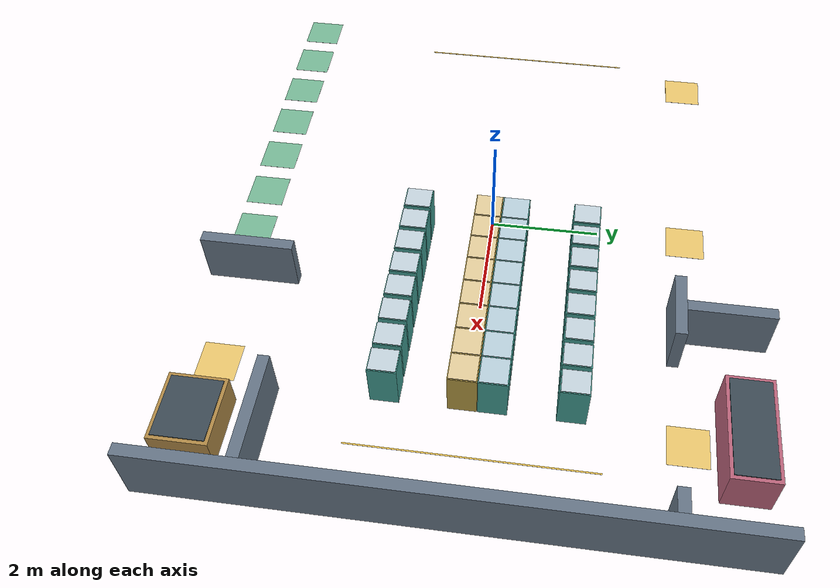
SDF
<sdf version="1.6">
 <world name="warehouse">
  <model name="wall_east">
   <static>true</static>
   <pose>6.1 0 0 0 0 0</pose>
   <link name="body">
    <collision name="collision">
     <pose>0 0 0.6 0 0 0</pose>
     <geometry><box><size>0.2 10 1.2</size></box></geometry>
    </collision>
    <visual name="visual">
     <pose>0 0 0.6 0 0 0</pose>
     <geometry><box><size>0.2 10 1.2</size></box></geometry>
     <material>
      <ambient>0.4 0.4627450980392157 0.5294117647058824 1</ambient>
      <diffuse>0.4 0.4627450980392157 0.5294117647058824 1</diffuse>
     </material>
     <cast_shadows>false</cast_shadows>
    </visual>
   </link>
  </model>
  <model name="partition_east">
   <static>true</static>
   <pose>5.05 -3.25 0 0 0 0</pose>
   <link name="body">
    <collision name="collision">
     <pose>0 0 0.5 0 0 0</pose>
     <geometry><box><size>1.9 0.2 1.0</size></box></geometry>
    </collision>
    <visual name="visual">
     <pose>0 0 0.5 0 0 0</pose>
     <geometry><box><size>1.9 0.2 1.0</size></box></geometry>
     <material>
      <ambient>0.4 0.4627450980392157 0.5294117647058824 1</ambient>
      <diffuse>0.4 0.4627450980392157 0.5294117647058824 1</diffuse>
     </material>
     <cast_shadows>false</cast_shadows>
    </visual>
   </link>
  </model>
  <model name="work_divider_e">
   <static>true</static>
   <pose>2.2 4.25 0 0 0 0</pose>
   <link name="body">
    <collision name="collision">
     <pose>0 0 0.5 0 0 0</pose>
     <geometry><box><size>0.2 1.5 1.0</size></box></geometry>
    </collision>
    <visual name="visual">
     <pose>0 0 0.5 0 0 0</pose>
     <geometry><box><size>0.2 1.5 1.0</size></box></geometry>
     <material>
      <ambient>0.4 0.4627450980392157 0.5294117647058824 1</ambient>
      <diffuse>0.4 0.4627450980392157 0.5294117647058824 1</diffuse>
     </material>
     <cast_shadows>false</cast_shadows>
    </visual>
   </link>
  </model>
  <model name="work_wing_e">
   <static>true</static>
   <pose>2.2 3.4 0 0 0 0</pose>
   <link name="body">
    <collision name="collision">
     <pose>0 0 0.5 0 0 0</pose>
     <geometry><box><size>1.2 0.2 1.0</size></box></geometry>
    </collision>
    <visual name="visual">
     <pose>0 0 0.5 0 0 0</pose>
     <geometry><box><size>1.2 0.2 1.0</size></box></geometry>
     <material>
      <ambient>0.4 0.4627450980392157 0.5294117647058824 1</ambient>
      <diffuse>0.4 0.4627450980392157 0.5294117647058824 1</diffuse>
     </material>
     <cast_shadows>false</cast_shadows>
    </visual>
   </link>
  </model>
  <model name="work_stub_e">
   <static>true</static>
   <pose>5.75 3.4 0 0 0 0</pose>
   <link name="body">
    <collision name="collision">
     <pose>0 0 0.5 0 0 0</pose>
     <geometry><box><size>0.5 0.2 1.0</size></box></geometry>
    </collision>
    <visual name="visual">
     <pose>0 0 0.5 0 0 0</pose>
     <geometry><box><size>0.5 0.2 1.0</size></box></geometry>
     <material>
      <ambient>0.4 0.4627450980392157 0.5294117647058824 1</ambient>
      <diffuse>0.4 0.4627450980392157 0.5294117647058824 1</diffuse>
     </material>
     <cast_shadows>false</cast_shadows>
    </visual>
   </link>
  </model>
  <model name="shipping_divider">
   <static>true</static>
   <pose>1.8 -4.175 0 0 0 0</pose>
   <link name="body">
    <collision name="collision">
     <pose>0 0 0.5 0 0 0</pose>
     <geometry><box><size>0.2 1.65 1.0</size></box></geometry>
    </collision>
    <visual name="visual">
     <pose>0 0 0.5 0 0 0</pose>
     <geometry><box><size>0.2 1.65 1.0</size></box></geometry>
     <material>
      <ambient>0.4 0.4627450980392157 0.5294117647058824 1</ambient>
      <diffuse>0.4 0.4627450980392157 0.5294117647058824 1</diffuse>
     </material>
     <cast_shadows>false</cast_shadows>
    </visual>
   </link>
  </model>
  <model name="machine">
   <static>true</static>
   <pose>4.3 4.5 0 0 0 0</pose>
   <link name="body">
    <collision name="collision">
     <pose>0 0 0.425 0 0 0</pose>
     <geometry><box><size>1.8 0.8 0.85</size></box></geometry>
    </collision>
    <visual name="visual">
     <pose>0 0 0.425 0 0 0</pose>
     <geometry><box><size>1.8 0.8 0.85</size></box></geometry>
     <material>
      <ambient>0.7372549019607844 0.39215686274509803 0.4823529411764706 1</ambient>
      <diffuse>0.7372549019607844 0.39215686274509803 0.4823529411764706 1</diffuse>
     </material>
     <cast_shadows>false</cast_shadows>
    </visual>
    <visual name="work_surface">
     <pose>0 0 0.86 0 0 0</pose>
     <geometry><box><size>1.6800000000000002 0.68 0.02</size></box></geometry>
     <material>
      <ambient>0.23921568627450981 0.29411764705882354 0.3333333333333333 1</ambient>
      <diffuse>0.23921568627450981 0.29411764705882354 0.3333333333333333 1</diffuse>
     </material>
     <cast_shadows>false</cast_shadows>
    </visual>
   </link>
  </model>
  <model name="shipping">
   <static>true</static>
   <pose>5 -4.3 0 0 0 0</pose>
   <link name="body">
    <collision name="collision">
     <pose>0 0 0.325 0 0 0</pose>
     <geometry><box><size>1.2 1.0 0.65</size></box></geometry>
    </collision>
    <visual name="visual">
     <pose>0 0 0.325 0 0 0</pose>
     <geometry><box><size>1.2 1.0 0.65</size></box></geometry>
     <material>
      <ambient>0.6980392156862745 0.5450980392156862 0.2784313725490196 1</ambient>
      <diffuse>0.6980392156862745 0.5450980392156862 0.2784313725490196 1</diffuse>
     </material>
     <cast_shadows>false</cast_shadows>
    </visual>
    <visual name="work_surface">
     <pose>0 0 0.66 0 0 0</pose>
     <geometry><box><size>1.08 0.88 0.02</size></box></geometry>
     <material>
      <ambient>0.23921568627450981 0.29411764705882354 0.3333333333333333 1</ambient>
      <diffuse>0.23921568627450981 0.29411764705882354 0.3333333333333333 1</diffuse>
     </material>
     <cast_shadows>false</cast_shadows>
    </visual>
   </link>
  </model>
  <model name="rack_B1_1">
   <static>true</static>
   <pose>0.32000000000000006 -1.35 0 0 0 0</pose>
   <link name="body">
    <collision name="collision">
     <pose>0 0 0.45 0 0 0</pose>
     <geometry><box><size>0.44 0.5 0.9</size></box></geometry>
    </collision>
    <visual name="bay_single">
     <pose>0 0 0.45 0 0 0</pose>
     <geometry><box><size>0.44 0.49 0.9</size></box></geometry>
     <material>
      <ambient>0.2549019607843137 0.615686274509804 0.5764705882352941 1</ambient>
      <diffuse>0.2549019607843137 0.615686274509804 0.5764705882352941 1</diffuse>
     </material>
     <cast_shadows>false</cast_shadows>
    </visual>
    <visual name="cap_single">
     <pose>0 0 0.91 0 0 0</pose>
     <geometry><box><size>0.41000000000000003 0.46 0.02</size></box></geometry>
     <material>
      <ambient>0.7764705882352941 0.8352941176470589 0.8745098039215686 1</ambient>
      <diffuse>0.7764705882352941 0.8352941176470589 0.8745098039215686 1</diffuse>
     </material>
     <cast_shadows>false</cast_shadows>
    </visual>
   </link>
  </model>
  <model name="rack_B1_2">
   <static>true</static>
   <pose>0.8285714285714286 -1.35 0 0 0 0</pose>
   <link name="body">
    <collision name="collision">
     <pose>0 0 0.45 0 0 0</pose>
     <geometry><box><size>0.44 0.5 0.9</size></box></geometry>
    </collision>
    <visual name="bay_single">
     <pose>0 0 0.45 0 0 0</pose>
     <geometry><box><size>0.44 0.49 0.9</size></box></geometry>
     <material>
      <ambient>0.2549019607843137 0.615686274509804 0.5764705882352941 1</ambient>
      <diffuse>0.2549019607843137 0.615686274509804 0.5764705882352941 1</diffuse>
     </material>
     <cast_shadows>false</cast_shadows>
    </visual>
    <visual name="cap_single">
     <pose>0 0 0.91 0 0 0</pose>
     <geometry><box><size>0.41000000000000003 0.46 0.02</size></box></geometry>
     <material>
      <ambient>0.7764705882352941 0.8352941176470589 0.8745098039215686 1</ambient>
      <diffuse>0.7764705882352941 0.8352941176470589 0.8745098039215686 1</diffuse>
     </material>
     <cast_shadows>false</cast_shadows>
    </visual>
   </link>
  </model>
  <model name="rack_B1_3">
   <static>true</static>
   <pose>1.3371428571428572 -1.35 0 0 0 0</pose>
   <link name="body">
    <collision name="collision">
     <pose>0 0 0.45 0 0 0</pose>
     <geometry><box><size>0.44 0.5 0.9</size></box></geometry>
    </collision>
    <visual name="bay_single">
     <pose>0 0 0.45 0 0 0</pose>
     <geometry><box><size>0.44 0.49 0.9</size></box></geometry>
     <material>
      <ambient>0.2549019607843137 0.615686274509804 0.5764705882352941 1</ambient>
      <diffuse>0.2549019607843137 0.615686274509804 0.5764705882352941 1</diffuse>
     </material>
     <cast_shadows>false</cast_shadows>
    </visual>
    <visual name="cap_single">
     <pose>0 0 0.91 0 0 0</pose>
     <geometry><box><size>0.41000000000000003 0.46 0.02</size></box></geometry>
     <material>
      <ambient>0.7764705882352941 0.8352941176470589 0.8745098039215686 1</ambient>
      <diffuse>0.7764705882352941 0.8352941176470589 0.8745098039215686 1</diffuse>
     </material>
     <cast_shadows>false</cast_shadows>
    </visual>
   </link>
  </model>
  <model name="rack_B1_4">
   <static>true</static>
   <pose>1.8457142857142859 -1.35 0 0 0 0</pose>
   <link name="body">
    <collision name="collision">
     <pose>0 0 0.45 0 0 0</pose>
     <geometry><box><size>0.44 0.5 0.9</size></box></geometry>
    </collision>
    <visual name="bay_single">
     <pose>0 0 0.45 0 0 0</pose>
     <geometry><box><size>0.44 0.49 0.9</size></box></geometry>
     <material>
      <ambient>0.2549019607843137 0.615686274509804 0.5764705882352941 1</ambient>
      <diffuse>0.2549019607843137 0.615686274509804 0.5764705882352941 1</diffuse>
     </material>
     <cast_shadows>false</cast_shadows>
    </visual>
    <visual name="cap_single">
     <pose>0 0 0.91 0 0 0</pose>
     <geometry><box><size>0.41000000000000003 0.46 0.02</size></box></geometry>
     <material>
      <ambient>0.7764705882352941 0.8352941176470589 0.8745098039215686 1</ambient>
      <diffuse>0.7764705882352941 0.8352941176470589 0.8745098039215686 1</diffuse>
     </material>
     <cast_shadows>false</cast_shadows>
    </visual>
   </link>
  </model>
  <model name="rack_B1_5">
   <static>true</static>
   <pose>2.354285714285714 -1.35 0 0 0 0</pose>
   <link name="body">
    <collision name="collision">
     <pose>0 0 0.45 0 0 0</pose>
     <geometry><box><size>0.44 0.5 0.9</size></box></geometry>
    </collision>
    <visual name="bay_single">
     <pose>0 0 0.45 0 0 0</pose>
     <geometry><box><size>0.44 0.49 0.9</size></box></geometry>
     <material>
      <ambient>0.2549019607843137 0.615686274509804 0.5764705882352941 1</ambient>
      <diffuse>0.2549019607843137 0.615686274509804 0.5764705882352941 1</diffuse>
     </material>
     <cast_shadows>false</cast_shadows>
    </visual>
    <visual name="cap_single">
     <pose>0 0 0.91 0 0 0</pose>
     <geometry><box><size>0.41000000000000003 0.46 0.02</size></box></geometry>
     <material>
      <ambient>0.7764705882352941 0.8352941176470589 0.8745098039215686 1</ambient>
      <diffuse>0.7764705882352941 0.8352941176470589 0.8745098039215686 1</diffuse>
     </material>
     <cast_shadows>false</cast_shadows>
    </visual>
   </link>
  </model>
  <model name="rack_B1_6">
   <static>true</static>
   <pose>2.862857142857143 -1.35 0 0 0 0</pose>
   <link name="body">
    <collision name="collision">
     <pose>0 0 0.45 0 0 0</pose>
     <geometry><box><size>0.44 0.5 0.9</size></box></geometry>
    </collision>
    <visual name="bay_single">
     <pose>0 0 0.45 0 0 0</pose>
     <geometry><box><size>0.44 0.49 0.9</size></box></geometry>
     <material>
      <ambient>0.2549019607843137 0.615686274509804 0.5764705882352941 1</ambient>
      <diffuse>0.2549019607843137 0.615686274509804 0.5764705882352941 1</diffuse>
     </material>
     <cast_shadows>false</cast_shadows>
    </visual>
    <visual name="cap_single">
     <pose>0 0 0.91 0 0 0</pose>
     <geometry><box><size>0.41000000000000003 0.46 0.02</size></box></geometry>
     <material>
      <ambient>0.7764705882352941 0.8352941176470589 0.8745098039215686 1</ambient>
      <diffuse>0.7764705882352941 0.8352941176470589 0.8745098039215686 1</diffuse>
     </material>
     <cast_shadows>false</cast_shadows>
    </visual>
   </link>
  </model>
  <model name="rack_B1_7">
   <static>true</static>
   <pose>3.371428571428572 -1.35 0 0 0 0</pose>
   <link name="body">
    <collision name="collision">
     <pose>0 0 0.45 0 0 0</pose>
     <geometry><box><size>0.44 0.5 0.9</size></box></geometry>
    </collision>
    <visual name="bay_single">
     <pose>0 0 0.45 0 0 0</pose>
     <geometry><box><size>0.44 0.49 0.9</size></box></geometry>
     <material>
      <ambient>0.2549019607843137 0.615686274509804 0.5764705882352941 1</ambient>
      <diffuse>0.2549019607843137 0.615686274509804 0.5764705882352941 1</diffuse>
     </material>
     <cast_shadows>false</cast_shadows>
    </visual>
    <visual name="cap_single">
     <pose>0 0 0.91 0 0 0</pose>
     <geometry><box><size>0.41000000000000003 0.46 0.02</size></box></geometry>
     <material>
      <ambient>0.7764705882352941 0.8352941176470589 0.8745098039215686 1</ambient>
      <diffuse>0.7764705882352941 0.8352941176470589 0.8745098039215686 1</diffuse>
     </material>
     <cast_shadows>false</cast_shadows>
    </visual>
   </link>
  </model>
  <model name="rack_B1_8">
   <static>true</static>
   <pose>3.88 -1.35 0 0 0 0</pose>
   <link name="body">
    <collision name="collision">
     <pose>0 0 0.45 0 0 0</pose>
     <geometry><box><size>0.44 0.5 0.9</size></box></geometry>
    </collision>
    <visual name="bay_single">
     <pose>0 0 0.45 0 0 0</pose>
     <geometry><box><size>0.44 0.49 0.9</size></box></geometry>
     <material>
      <ambient>0.2549019607843137 0.615686274509804 0.5764705882352941 1</ambient>
      <diffuse>0.2549019607843137 0.615686274509804 0.5764705882352941 1</diffuse>
     </material>
     <cast_shadows>false</cast_shadows>
    </visual>
    <visual name="cap_single">
     <pose>0 0 0.91 0 0 0</pose>
     <geometry><box><size>0.41000000000000003 0.46 0.02</size></box></geometry>
     <material>
      <ambient>0.7764705882352941 0.8352941176470589 0.8745098039215686 1</ambient>
      <diffuse>0.7764705882352941 0.8352941176470589 0.8745098039215686 1</diffuse>
     </material>
     <cast_shadows>false</cast_shadows>
    </visual>
   </link>
  </model>
  <model name="rack_B2_1">
   <static>true</static>
   <pose>0.3500000000000001 0.2 0 0 0 0</pose>
   <link name="body">
    <collision name="collision">
     <pose>0 0 0.45 0 0 0</pose>
     <geometry><box><size>0.5 1.0 0.9</size></box></geometry>
    </collision>
    <visual name="bay_north">
     <pose>0 0.25 0.45 0 0 0</pose>
     <geometry><box><size>0.5 0.49 0.9</size></box></geometry>
     <material>
      <ambient>0.2549019607843137 0.615686274509804 0.5764705882352941 1</ambient>
      <diffuse>0.2549019607843137 0.615686274509804 0.5764705882352941 1</diffuse>
     </material>
     <cast_shadows>false</cast_shadows>
    </visual>
    <visual name="cap_north">
     <pose>0 0.25 0.91 0 0 0</pose>
     <geometry><box><size>0.47 0.46 0.02</size></box></geometry>
     <material>
      <ambient>0.7294117647058823 0.8235294117647058 0.8705882352941177 1</ambient>
      <diffuse>0.7294117647058823 0.8235294117647058 0.8705882352941177 1</diffuse>
     </material>
     <cast_shadows>false</cast_shadows>
    </visual>
    <visual name="bay_south">
     <pose>0 -0.25 0.45 0 0 0</pose>
     <geometry><box><size>0.5 0.49 0.9</size></box></geometry>
     <material>
      <ambient>0.7137254901960784 0.6078431372549019 0.2627450980392157 1</ambient>
      <diffuse>0.7137254901960784 0.6078431372549019 0.2627450980392157 1</diffuse>
     </material>
     <cast_shadows>false</cast_shadows>
    </visual>
    <visual name="cap_south">
     <pose>0 -0.25 0.91 0 0 0</pose>
     <geometry><box><size>0.47 0.46 0.02</size></box></geometry>
     <material>
      <ambient>0.9019607843137255 0.8117647058823529 0.615686274509804 1</ambient>
      <diffuse>0.9019607843137255 0.8117647058823529 0.615686274509804 1</diffuse>
     </material>
     <cast_shadows>false</cast_shadows>
    </visual>
   </link>
  </model>
  <model name="rack_B2_2">
   <static>true</static>
   <pose>0.8500000000000001 0.2 0 0 0 0</pose>
   <link name="body">
    <collision name="collision">
     <pose>0 0 0.45 0 0 0</pose>
     <geometry><box><size>0.5 1.0 0.9</size></box></geometry>
    </collision>
    <visual name="bay_north">
     <pose>0 0.25 0.45 0 0 0</pose>
     <geometry><box><size>0.5 0.49 0.9</size></box></geometry>
     <material>
      <ambient>0.2549019607843137 0.615686274509804 0.5764705882352941 1</ambient>
      <diffuse>0.2549019607843137 0.615686274509804 0.5764705882352941 1</diffuse>
     </material>
     <cast_shadows>false</cast_shadows>
    </visual>
    <visual name="cap_north">
     <pose>0 0.25 0.91 0 0 0</pose>
     <geometry><box><size>0.47 0.46 0.02</size></box></geometry>
     <material>
      <ambient>0.7294117647058823 0.8235294117647058 0.8705882352941177 1</ambient>
      <diffuse>0.7294117647058823 0.8235294117647058 0.8705882352941177 1</diffuse>
     </material>
     <cast_shadows>false</cast_shadows>
    </visual>
    <visual name="bay_south">
     <pose>0 -0.25 0.45 0 0 0</pose>
     <geometry><box><size>0.5 0.49 0.9</size></box></geometry>
     <material>
      <ambient>0.7137254901960784 0.6078431372549019 0.2627450980392157 1</ambient>
      <diffuse>0.7137254901960784 0.6078431372549019 0.2627450980392157 1</diffuse>
     </material>
     <cast_shadows>false</cast_shadows>
    </visual>
    <visual name="cap_south">
     <pose>0 -0.25 0.91 0 0 0</pose>
     <geometry><box><size>0.47 0.46 0.02</size></box></geometry>
     <material>
      <ambient>0.9019607843137255 0.8117647058823529 0.615686274509804 1</ambient>
      <diffuse>0.9019607843137255 0.8117647058823529 0.615686274509804 1</diffuse>
     </material>
     <cast_shadows>false</cast_shadows>
    </visual>
   </link>
  </model>
  <model name="rack_B2_3">
   <static>true</static>
   <pose>1.35 0.2 0 0 0 0</pose>
   <link name="body">
    <collision name="collision">
     <pose>0 0 0.45 0 0 0</pose>
     <geometry><box><size>0.5 1.0 0.9</size></box></geometry>
    </collision>
    <visual name="bay_north">
     <pose>0 0.25 0.45 0 0 0</pose>
     <geometry><box><size>0.5 0.49 0.9</size></box></geometry>
     <material>
      <ambient>0.2549019607843137 0.615686274509804 0.5764705882352941 1</ambient>
      <diffuse>0.2549019607843137 0.615686274509804 0.5764705882352941 1</diffuse>
     </material>
     <cast_shadows>false</cast_shadows>
    </visual>
    <visual name="cap_north">
     <pose>0 0.25 0.91 0 0 0</pose>
     <geometry><box><size>0.47 0.46 0.02</size></box></geometry>
     <material>
      <ambient>0.7294117647058823 0.8235294117647058 0.8705882352941177 1</ambient>
      <diffuse>0.7294117647058823 0.8235294117647058 0.8705882352941177 1</diffuse>
     </material>
     <cast_shadows>false</cast_shadows>
    </visual>
    <visual name="bay_south">
     <pose>0 -0.25 0.45 0 0 0</pose>
     <geometry><box><size>0.5 0.49 0.9</size></box></geometry>
     <material>
      <ambient>0.7137254901960784 0.6078431372549019 0.2627450980392157 1</ambient>
      <diffuse>0.7137254901960784 0.6078431372549019 0.2627450980392157 1</diffuse>
     </material>
     <cast_shadows>false</cast_shadows>
    </visual>
    <visual name="cap_south">
     <pose>0 -0.25 0.91 0 0 0</pose>
     <geometry><box><size>0.47 0.46 0.02</size></box></geometry>
     <material>
      <ambient>0.9019607843137255 0.8117647058823529 0.615686274509804 1</ambient>
      <diffuse>0.9019607843137255 0.8117647058823529 0.615686274509804 1</diffuse>
     </material>
     <cast_shadows>false</cast_shadows>
    </visual>
   </link>
  </model>
  <model name="rack_B2_4">
   <static>true</static>
   <pose>1.85 0.2 0 0 0 0</pose>
   <link name="body">
    <collision name="collision">
     <pose>0 0 0.45 0 0 0</pose>
     <geometry><box><size>0.5 1.0 0.9</size></box></geometry>
    </collision>
    <visual name="bay_north">
     <pose>0 0.25 0.45 0 0 0</pose>
     <geometry><box><size>0.5 0.49 0.9</size></box></geometry>
     <material>
      <ambient>0.2549019607843137 0.615686274509804 0.5764705882352941 1</ambient>
      <diffuse>0.2549019607843137 0.615686274509804 0.5764705882352941 1</diffuse>
     </material>
     <cast_shadows>false</cast_shadows>
    </visual>
    <visual name="cap_north">
     <pose>0 0.25 0.91 0 0 0</pose>
     <geometry><box><size>0.47 0.46 0.02</size></box></geometry>
     <material>
      <ambient>0.7294117647058823 0.8235294117647058 0.8705882352941177 1</ambient>
      <diffuse>0.7294117647058823 0.8235294117647058 0.8705882352941177 1</diffuse>
     </material>
     <cast_shadows>false</cast_shadows>
    </visual>
    <visual name="bay_south">
     <pose>0 -0.25 0.45 0 0 0</pose>
     <geometry><box><size>0.5 0.49 0.9</size></box></geometry>
     <material>
      <ambient>0.7137254901960784 0.6078431372549019 0.2627450980392157 1</ambient>
      <diffuse>0.7137254901960784 0.6078431372549019 0.2627450980392157 1</diffuse>
     </material>
     <cast_shadows>false</cast_shadows>
    </visual>
    <visual name="cap_south">
     <pose>0 -0.25 0.91 0 0 0</pose>
     <geometry><box><size>0.47 0.46 0.02</size></box></geometry>
     <material>
      <ambient>0.9019607843137255 0.8117647058823529 0.615686274509804 1</ambient>
      <diffuse>0.9019607843137255 0.8117647058823529 0.615686274509804 1</diffuse>
     </material>
     <cast_shadows>false</cast_shadows>
    </visual>
   </link>
  </model>
  <model name="rack_B2_5">
   <static>true</static>
   <pose>2.35 0.2 0 0 0 0</pose>
   <link name="body">
    <collision name="collision">
     <pose>0 0 0.45 0 0 0</pose>
     <geometry><box><size>0.5 1.0 0.9</size></box></geometry>
    </collision>
    <visual name="bay_north">
     <pose>0 0.25 0.45 0 0 0</pose>
     <geometry><box><size>0.5 0.49 0.9</size></box></geometry>
     <material>
      <ambient>0.2549019607843137 0.615686274509804 0.5764705882352941 1</ambient>
      <diffuse>0.2549019607843137 0.615686274509804 0.5764705882352941 1</diffuse>
     </material>
     <cast_shadows>false</cast_shadows>
    </visual>
    <visual name="cap_north">
     <pose>0 0.25 0.91 0 0 0</pose>
     <geometry><box><size>0.47 0.46 0.02</size></box></geometry>
     <material>
      <ambient>0.7294117647058823 0.8235294117647058 0.8705882352941177 1</ambient>
      <diffuse>0.7294117647058823 0.8235294117647058 0.8705882352941177 1</diffuse>
     </material>
     <cast_shadows>false</cast_shadows>
    </visual>
    <visual name="bay_south">
     <pose>0 -0.25 0.45 0 0 0</pose>
     <geometry><box><size>0.5 0.49 0.9</size></box></geometry>
     <material>
      <ambient>0.7137254901960784 0.6078431372549019 0.2627450980392157 1</ambient>
      <diffuse>0.7137254901960784 0.6078431372549019 0.2627450980392157 1</diffuse>
     </material>
     <cast_shadows>false</cast_shadows>
    </visual>
    <visual name="cap_south">
     <pose>0 -0.25 0.91 0 0 0</pose>
     <geometry><box><size>0.47 0.46 0.02</size></box></geometry>
     <material>
      <ambient>0.9019607843137255 0.8117647058823529 0.615686274509804 1</ambient>
      <diffuse>0.9019607843137255 0.8117647058823529 0.615686274509804 1</diffuse>
     </material>
     <cast_shadows>false</cast_shadows>
    </visual>
   </link>
  </model>
  <model name="rack_B2_6">
   <static>true</static>
   <pose>2.85 0.2 0 0 0 0</pose>
   <link name="body">
    <collision name="collision">
     <pose>0 0 0.45 0 0 0</pose>
     <geometry><box><size>0.5 1.0 0.9</size></box></geometry>
    </collision>
    <visual name="bay_north">
     <pose>0 0.25 0.45 0 0 0</pose>
     <geometry><box><size>0.5 0.49 0.9</size></box></geometry>
     <material>
      <ambient>0.2549019607843137 0.615686274509804 0.5764705882352941 1</ambient>
      <diffuse>0.2549019607843137 0.615686274509804 0.5764705882352941 1</diffuse>
     </material>
     <cast_shadows>false</cast_shadows>
    </visual>
    <visual name="cap_north">
     <pose>0 0.25 0.91 0 0 0</pose>
     <geometry><box><size>0.47 0.46 0.02</size></box></geometry>
     <material>
      <ambient>0.7294117647058823 0.8235294117647058 0.8705882352941177 1</ambient>
      <diffuse>0.7294117647058823 0.8235294117647058 0.8705882352941177 1</diffuse>
     </material>
     <cast_shadows>false</cast_shadows>
    </visual>
    <visual name="bay_south">
     <pose>0 -0.25 0.45 0 0 0</pose>
     <geometry><box><size>0.5 0.49 0.9</size></box></geometry>
     <material>
      <ambient>0.7137254901960784 0.6078431372549019 0.2627450980392157 1</ambient>
      <diffuse>0.7137254901960784 0.6078431372549019 0.2627450980392157 1</diffuse>
     </material>
     <cast_shadows>false</cast_shadows>
    </visual>
    <visual name="cap_south">
     <pose>0 -0.25 0.91 0 0 0</pose>
     <geometry><box><size>0.47 0.46 0.02</size></box></geometry>
     <material>
      <ambient>0.9019607843137255 0.8117647058823529 0.615686274509804 1</ambient>
      <diffuse>0.9019607843137255 0.8117647058823529 0.615686274509804 1</diffuse>
     </material>
     <cast_shadows>false</cast_shadows>
    </visual>
   </link>
  </model>
  <model name="rack_B2_7">
   <static>true</static>
   <pose>3.35 0.2 0 0 0 0</pose>
   <link name="body">
    <collision name="collision">
     <pose>0 0 0.45 0 0 0</pose>
     <geometry><box><size>0.5 1.0 0.9</size></box></geometry>
    </collision>
    <visual name="bay_north">
     <pose>0 0.25 0.45 0 0 0</pose>
     <geometry><box><size>0.5 0.49 0.9</size></box></geometry>
     <material>
      <ambient>0.2549019607843137 0.615686274509804 0.5764705882352941 1</ambient>
      <diffuse>0.2549019607843137 0.615686274509804 0.5764705882352941 1</diffuse>
     </material>
     <cast_shadows>false</cast_shadows>
    </visual>
    <visual name="cap_north">
     <pose>0 0.25 0.91 0 0 0</pose>
     <geometry><box><size>0.47 0.46 0.02</size></box></geometry>
     <material>
      <ambient>0.7294117647058823 0.8235294117647058 0.8705882352941177 1</ambient>
      <diffuse>0.7294117647058823 0.8235294117647058 0.8705882352941177 1</diffuse>
     </material>
     <cast_shadows>false</cast_shadows>
    </visual>
    <visual name="bay_south">
     <pose>0 -0.25 0.45 0 0 0</pose>
     <geometry><box><size>0.5 0.49 0.9</size></box></geometry>
     <material>
      <ambient>0.7137254901960784 0.6078431372549019 0.2627450980392157 1</ambient>
      <diffuse>0.7137254901960784 0.6078431372549019 0.2627450980392157 1</diffuse>
     </material>
     <cast_shadows>false</cast_shadows>
    </visual>
    <visual name="cap_south">
     <pose>0 -0.25 0.91 0 0 0</pose>
     <geometry><box><size>0.47 0.46 0.02</size></box></geometry>
     <material>
      <ambient>0.9019607843137255 0.8117647058823529 0.615686274509804 1</ambient>
      <diffuse>0.9019607843137255 0.8117647058823529 0.615686274509804 1</diffuse>
     </material>
     <cast_shadows>false</cast_shadows>
    </visual>
   </link>
  </model>
  <model name="rack_B2_8">
   <static>true</static>
   <pose>3.85 0.2 0 0 0 0</pose>
   <link name="body">
    <collision name="collision">
     <pose>0 0 0.45 0 0 0</pose>
     <geometry><box><size>0.5 1.0 0.9</size></box></geometry>
    </collision>
    <visual name="bay_north">
     <pose>0 0.25 0.45 0 0 0</pose>
     <geometry><box><size>0.5 0.49 0.9</size></box></geometry>
     <material>
      <ambient>0.2549019607843137 0.615686274509804 0.5764705882352941 1</ambient>
      <diffuse>0.2549019607843137 0.615686274509804 0.5764705882352941 1</diffuse>
     </material>
     <cast_shadows>false</cast_shadows>
    </visual>
    <visual name="cap_north">
     <pose>0 0.25 0.91 0 0 0</pose>
     <geometry><box><size>0.47 0.46 0.02</size></box></geometry>
     <material>
      <ambient>0.7294117647058823 0.8235294117647058 0.8705882352941177 1</ambient>
      <diffuse>0.7294117647058823 0.8235294117647058 0.8705882352941177 1</diffuse>
     </material>
     <cast_shadows>false</cast_shadows>
    </visual>
    <visual name="bay_south">
     <pose>0 -0.25 0.45 0 0 0</pose>
     <geometry><box><size>0.5 0.49 0.9</size></box></geometry>
     <material>
      <ambient>0.7137254901960784 0.6078431372549019 0.2627450980392157 1</ambient>
      <diffuse>0.7137254901960784 0.6078431372549019 0.2627450980392157 1</diffuse>
     </material>
     <cast_shadows>false</cast_shadows>
    </visual>
    <visual name="cap_south">
     <pose>0 -0.25 0.91 0 0 0</pose>
     <geometry><box><size>0.47 0.46 0.02</size></box></geometry>
     <material>
      <ambient>0.9019607843137255 0.8117647058823529 0.615686274509804 1</ambient>
      <diffuse>0.9019607843137255 0.8117647058823529 0.615686274509804 1</diffuse>
     </material>
     <cast_shadows>false</cast_shadows>
    </visual>
   </link>
  </model>
  <model name="rack_B3_1">
   <static>true</static>
   <pose>0.32000000000000006 1.75 0 0 0 0</pose>
   <link name="body">
    <collision name="collision">
     <pose>0 0 0.45 0 0 0</pose>
     <geometry><box><size>0.44 0.5 0.9</size></box></geometry>
    </collision>
    <visual name="bay_single">
     <pose>0 0 0.45 0 0 0</pose>
     <geometry><box><size>0.44 0.49 0.9</size></box></geometry>
     <material>
      <ambient>0.2549019607843137 0.615686274509804 0.5764705882352941 1</ambient>
      <diffuse>0.2549019607843137 0.615686274509804 0.5764705882352941 1</diffuse>
     </material>
     <cast_shadows>false</cast_shadows>
    </visual>
    <visual name="cap_single">
     <pose>0 0 0.91 0 0 0</pose>
     <geometry><box><size>0.41000000000000003 0.46 0.02</size></box></geometry>
     <material>
      <ambient>0.7764705882352941 0.8352941176470589 0.8745098039215686 1</ambient>
      <diffuse>0.7764705882352941 0.8352941176470589 0.8745098039215686 1</diffuse>
     </material>
     <cast_shadows>false</cast_shadows>
    </visual>
   </link>
  </model>
  <model name="rack_B3_2">
   <static>true</static>
   <pose>0.8285714285714286 1.75 0 0 0 0</pose>
   <link name="body">
    <collision name="collision">
     <pose>0 0 0.45 0 0 0</pose>
     <geometry><box><size>0.44 0.5 0.9</size></box></geometry>
    </collision>
    <visual name="bay_single">
     <pose>0 0 0.45 0 0 0</pose>
     <geometry><box><size>0.44 0.49 0.9</size></box></geometry>
     <material>
      <ambient>0.2549019607843137 0.615686274509804 0.5764705882352941 1</ambient>
      <diffuse>0.2549019607843137 0.615686274509804 0.5764705882352941 1</diffuse>
     </material>
     <cast_shadows>false</cast_shadows>
    </visual>
    <visual name="cap_single">
     <pose>0 0 0.91 0 0 0</pose>
     <geometry><box><size>0.41000000000000003 0.46 0.02</size></box></geometry>
     <material>
      <ambient>0.7764705882352941 0.8352941176470589 0.8745098039215686 1</ambient>
      <diffuse>0.7764705882352941 0.8352941176470589 0.8745098039215686 1</diffuse>
     </material>
     <cast_shadows>false</cast_shadows>
    </visual>
   </link>
  </model>
  <model name="rack_B3_3">
   <static>true</static>
   <pose>1.3371428571428572 1.75 0 0 0 0</pose>
   <link name="body">
    <collision name="collision">
     <pose>0 0 0.45 0 0 0</pose>
     <geometry><box><size>0.44 0.5 0.9</size></box></geometry>
    </collision>
    <visual name="bay_single">
     <pose>0 0 0.45 0 0 0</pose>
     <geometry><box><size>0.44 0.49 0.9</size></box></geometry>
     <material>
      <ambient>0.2549019607843137 0.615686274509804 0.5764705882352941 1</ambient>
      <diffuse>0.2549019607843137 0.615686274509804 0.5764705882352941 1</diffuse>
     </material>
     <cast_shadows>false</cast_shadows>
    </visual>
    <visual name="cap_single">
     <pose>0 0 0.91 0 0 0</pose>
     <geometry><box><size>0.41000000000000003 0.46 0.02</size></box></geometry>
     <material>
      <ambient>0.7764705882352941 0.8352941176470589 0.8745098039215686 1</ambient>
      <diffuse>0.7764705882352941 0.8352941176470589 0.8745098039215686 1</diffuse>
     </material>
     <cast_shadows>false</cast_shadows>
    </visual>
   </link>
  </model>
  <model name="rack_B3_4">
   <static>true</static>
   <pose>1.8457142857142859 1.75 0 0 0 0</pose>
   <link name="body">
    <collision name="collision">
     <pose>0 0 0.45 0 0 0</pose>
     <geometry><box><size>0.44 0.5 0.9</size></box></geometry>
    </collision>
    <visual name="bay_single">
     <pose>0 0 0.45 0 0 0</pose>
     <geometry><box><size>0.44 0.49 0.9</size></box></geometry>
     <material>
      <ambient>0.2549019607843137 0.615686274509804 0.5764705882352941 1</ambient>
      <diffuse>0.2549019607843137 0.615686274509804 0.5764705882352941 1</diffuse>
     </material>
     <cast_shadows>false</cast_shadows>
    </visual>
    <visual name="cap_single">
     <pose>0 0 0.91 0 0 0</pose>
     <geometry><box><size>0.41000000000000003 0.46 0.02</size></box></geometry>
     <material>
      <ambient>0.7764705882352941 0.8352941176470589 0.8745098039215686 1</ambient>
      <diffuse>0.7764705882352941 0.8352941176470589 0.8745098039215686 1</diffuse>
     </material>
     <cast_shadows>false</cast_shadows>
    </visual>
   </link>
  </model>
  <model name="rack_B3_5">
   <static>true</static>
   <pose>2.354285714285714 1.75 0 0 0 0</pose>
   <link name="body">
    <collision name="collision">
     <pose>0 0 0.45 0 0 0</pose>
     <geometry><box><size>0.44 0.5 0.9</size></box></geometry>
    </collision>
    <visual name="bay_single">
     <pose>0 0 0.45 0 0 0</pose>
     <geometry><box><size>0.44 0.49 0.9</size></box></geometry>
     <material>
      <ambient>0.2549019607843137 0.615686274509804 0.5764705882352941 1</ambient>
      <diffuse>0.2549019607843137 0.615686274509804 0.5764705882352941 1</diffuse>
     </material>
     <cast_shadows>false</cast_shadows>
    </visual>
    <visual name="cap_single">
     <pose>0 0 0.91 0 0 0</pose>
     <geometry><box><size>0.41000000000000003 0.46 0.02</size></box></geometry>
     <material>
      <ambient>0.7764705882352941 0.8352941176470589 0.8745098039215686 1</ambient>
      <diffuse>0.7764705882352941 0.8352941176470589 0.8745098039215686 1</diffuse>
     </material>
     <cast_shadows>false</cast_shadows>
    </visual>
   </link>
  </model>
  <model name="rack_B3_6">
   <static>true</static>
   <pose>2.862857142857143 1.75 0 0 0 0</pose>
   <link name="body">
    <collision name="collision">
     <pose>0 0 0.45 0 0 0</pose>
     <geometry><box><size>0.44 0.5 0.9</size></box></geometry>
    </collision>
    <visual name="bay_single">
     <pose>0 0 0.45 0 0 0</pose>
     <geometry><box><size>0.44 0.49 0.9</size></box></geometry>
     <material>
      <ambient>0.2549019607843137 0.615686274509804 0.5764705882352941 1</ambient>
      <diffuse>0.2549019607843137 0.615686274509804 0.5764705882352941 1</diffuse>
     </material>
     <cast_shadows>false</cast_shadows>
    </visual>
    <visual name="cap_single">
     <pose>0 0 0.91 0 0 0</pose>
     <geometry><box><size>0.41000000000000003 0.46 0.02</size></box></geometry>
     <material>
      <ambient>0.7764705882352941 0.8352941176470589 0.8745098039215686 1</ambient>
      <diffuse>0.7764705882352941 0.8352941176470589 0.8745098039215686 1</diffuse>
     </material>
     <cast_shadows>false</cast_shadows>
    </visual>
   </link>
  </model>
  <model name="rack_B3_7">
   <static>true</static>
   <pose>3.371428571428572 1.75 0 0 0 0</pose>
   <link name="body">
    <collision name="collision">
     <pose>0 0 0.45 0 0 0</pose>
     <geometry><box><size>0.44 0.5 0.9</size></box></geometry>
    </collision>
    <visual name="bay_single">
     <pose>0 0 0.45 0 0 0</pose>
     <geometry><box><size>0.44 0.49 0.9</size></box></geometry>
     <material>
      <ambient>0.2549019607843137 0.615686274509804 0.5764705882352941 1</ambient>
      <diffuse>0.2549019607843137 0.615686274509804 0.5764705882352941 1</diffuse>
     </material>
     <cast_shadows>false</cast_shadows>
    </visual>
    <visual name="cap_single">
     <pose>0 0 0.91 0 0 0</pose>
     <geometry><box><size>0.41000000000000003 0.46 0.02</size></box></geometry>
     <material>
      <ambient>0.7764705882352941 0.8352941176470589 0.8745098039215686 1</ambient>
      <diffuse>0.7764705882352941 0.8352941176470589 0.8745098039215686 1</diffuse>
     </material>
     <cast_shadows>false</cast_shadows>
    </visual>
   </link>
  </model>
  <model name="rack_B3_8">
   <static>true</static>
   <pose>3.88 1.75 0 0 0 0</pose>
   <link name="body">
    <collision name="collision">
     <pose>0 0 0.45 0 0 0</pose>
     <geometry><box><size>0.44 0.5 0.9</size></box></geometry>
    </collision>
    <visual name="bay_single">
     <pose>0 0 0.45 0 0 0</pose>
     <geometry><box><size>0.44 0.49 0.9</size></box></geometry>
     <material>
      <ambient>0.2549019607843137 0.615686274509804 0.5764705882352941 1</ambient>
      <diffuse>0.2549019607843137 0.615686274509804 0.5764705882352941 1</diffuse>
     </material>
     <cast_shadows>false</cast_shadows>
    </visual>
    <visual name="cap_single">
     <pose>0 0 0.91 0 0 0</pose>
     <geometry><box><size>0.41000000000000003 0.46 0.02</size></box></geometry>
     <material>
      <ambient>0.7764705882352941 0.8352941176470589 0.8745098039215686 1</ambient>
      <diffuse>0.7764705882352941 0.8352941176470589 0.8745098039215686 1</diffuse>
     </material>
     <cast_shadows>false</cast_shadows>
    </visual>
   </link>
  </model>
  <model name="floor_markings">
   <static>true</static>
   <link name="paint">
    <visual name="park_1">
     <pose>-5.3 -4.5 0.001 0 0 0</pose>
     <geometry><box><size>0.7 0.7 0.002</size></box></geometry>
     <material>
      <ambient>0.47058823529411764 0.7254901960784313 0.596078431372549 1</ambient>
      <diffuse>0.47058823529411764 0.7254901960784313 0.596078431372549 1</diffuse>
     </material>
     <cast_shadows>false</cast_shadows>
    </visual>
    <visual name="park_2">
     <pose>-4.3 -4.5 0.001 0 0 0</pose>
     <geometry><box><size>0.7 0.7 0.002</size></box></geometry>
     <material>
      <ambient>0.47058823529411764 0.7254901960784313 0.596078431372549 1</ambient>
      <diffuse>0.47058823529411764 0.7254901960784313 0.596078431372549 1</diffuse>
     </material>
     <cast_shadows>false</cast_shadows>
    </visual>
    <visual name="park_3">
     <pose>-3.3 -4.5 0.001 0 0 0</pose>
     <geometry><box><size>0.7 0.7 0.002</size></box></geometry>
     <material>
      <ambient>0.47058823529411764 0.7254901960784313 0.596078431372549 1</ambient>
      <diffuse>0.47058823529411764 0.7254901960784313 0.596078431372549 1</diffuse>
     </material>
     <cast_shadows>false</cast_shadows>
    </visual>
    <visual name="park_4">
     <pose>-2.3 -4.5 0.001 0 0 0</pose>
     <geometry><box><size>0.7 0.7 0.002</size></box></geometry>
     <material>
      <ambient>0.47058823529411764 0.7254901960784313 0.596078431372549 1</ambient>
      <diffuse>0.47058823529411764 0.7254901960784313 0.596078431372549 1</diffuse>
     </material>
     <cast_shadows>false</cast_shadows>
    </visual>
    <visual name="park_5">
     <pose>-1.3 -4.5 0.001 0 0 0</pose>
     <geometry><box><size>0.7 0.7 0.002</size></box></geometry>
     <material>
      <ambient>0.47058823529411764 0.7254901960784313 0.596078431372549 1</ambient>
      <diffuse>0.47058823529411764 0.7254901960784313 0.596078431372549 1</diffuse>
     </material>
     <cast_shadows>false</cast_shadows>
    </visual>
    <visual name="park_6">
     <pose>-0.3 -4.5 0.001 0 0 0</pose>
     <geometry><box><size>0.7 0.7 0.002</size></box></geometry>
     <material>
      <ambient>0.47058823529411764 0.7254901960784313 0.596078431372549 1</ambient>
      <diffuse>0.47058823529411764 0.7254901960784313 0.596078431372549 1</diffuse>
     </material>
     <cast_shadows>false</cast_shadows>
    </visual>
    <visual name="park_7">
     <pose>0.7 -4.5 0.001 0 0 0</pose>
     <geometry><box><size>0.7 0.7 0.002</size></box></geometry>
     <material>
      <ambient>0.47058823529411764 0.7254901960784313 0.596078431372549 1</ambient>
      <diffuse>0.47058823529411764 0.7254901960784313 0.596078431372549 1</diffuse>
     </material>
     <cast_shadows>false</cast_shadows>
    </visual>
    <visual name="target1">
     <pose>-4.3 3.65 0.001 0 0 0</pose>
     <geometry><box><size>0.7 0.7 0.002</size></box></geometry>
     <material>
      <ambient>0.9294117647058824 0.788235294117647 0.43529411764705883 1</ambient>
      <diffuse>0.9294117647058824 0.788235294117647 0.43529411764705883 1</diffuse>
     </material>
     <cast_shadows>false</cast_shadows>
    </visual>
    <visual name="target2">
     <pose>0 3.65 0.001 0 0 0</pose>
     <geometry><box><size>0.7 0.7 0.002</size></box></geometry>
     <material>
      <ambient>0.9294117647058824 0.788235294117647 0.43529411764705883 1</ambient>
      <diffuse>0.9294117647058824 0.788235294117647 0.43529411764705883 1</diffuse>
     </material>
     <cast_shadows>false</cast_shadows>
    </visual>
    <visual name="target3">
     <pose>4.3 3.65 0.001 0 0 0</pose>
     <geometry><box><size>0.7 0.7 0.002</size></box></geometry>
     <material>
      <ambient>0.9294117647058824 0.788235294117647 0.43529411764705883 1</ambient>
      <diffuse>0.9294117647058824 0.788235294117647 0.43529411764705883 1</diffuse>
     </material>
     <cast_shadows>false</cast_shadows>
    </visual>
    <visual name="target4">
     <pose>3.7 -4.3 0.001 0 0 0</pose>
     <geometry><box><size>0.7 0.7 0.002</size></box></geometry>
     <material>
      <ambient>0.9294117647058824 0.788235294117647 0.43529411764705883 1</ambient>
      <diffuse>0.9294117647058824 0.788235294117647 0.43529411764705883 1</diffuse>
     </material>
     <cast_shadows>false</cast_shadows>
    </visual>
    <visual name="outer_lane_0">
     <pose>-4.95 0.2 0.001 0 0 0</pose>
     <geometry><box><size>0.025 4.2 0.002</size></box></geometry>
     <material>
      <ambient>0.9647058823529412 0.8 0.3215686274509804 1</ambient>
      <diffuse>0.9647058823529412 0.8 0.3215686274509804 1</diffuse>
     </material>
     <cast_shadows>false</cast_shadows>
    </visual>
    <visual name="outer_lane_1">
     <pose>4.95 0.2 0.001 0 0 0</pose>
     <geometry><box><size>0.025 4.2 0.002</size></box></geometry>
     <material>
      <ambient>0.9647058823529412 0.8 0.3215686274509804 1</ambient>
      <diffuse>0.9647058823529412 0.8 0.3215686274509804 1</diffuse>
     </material>
     <cast_shadows>false</cast_shadows>
    </visual>
   </link>
  </model>
 </world>
</sdf>
